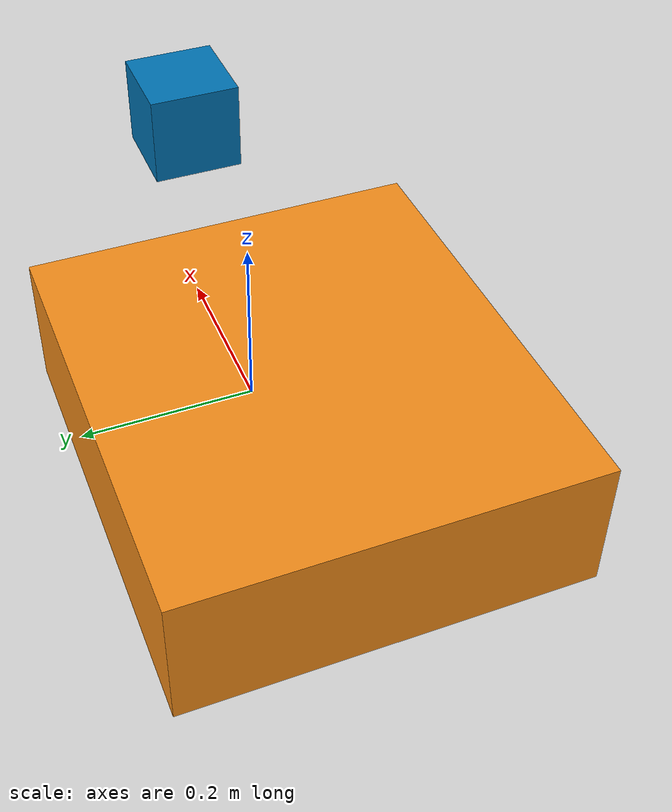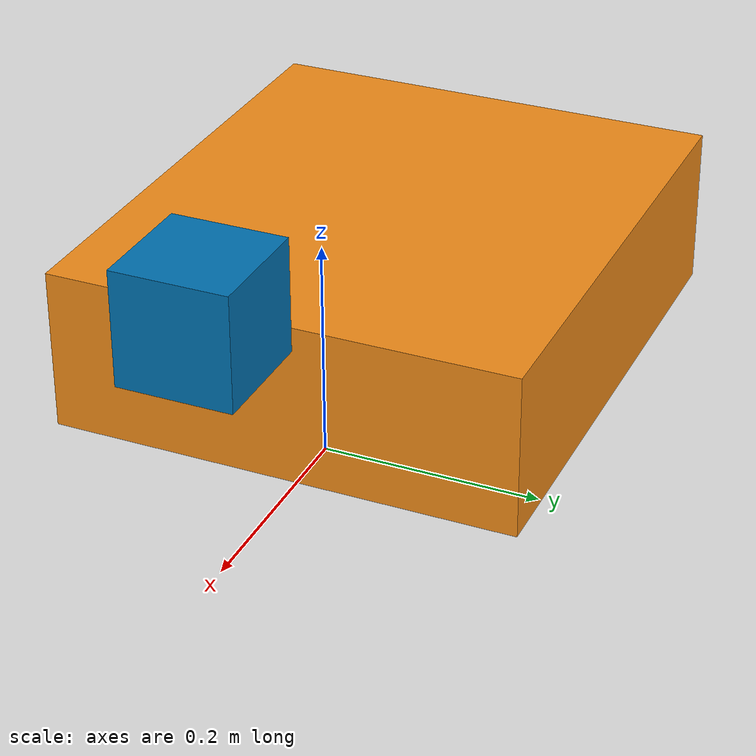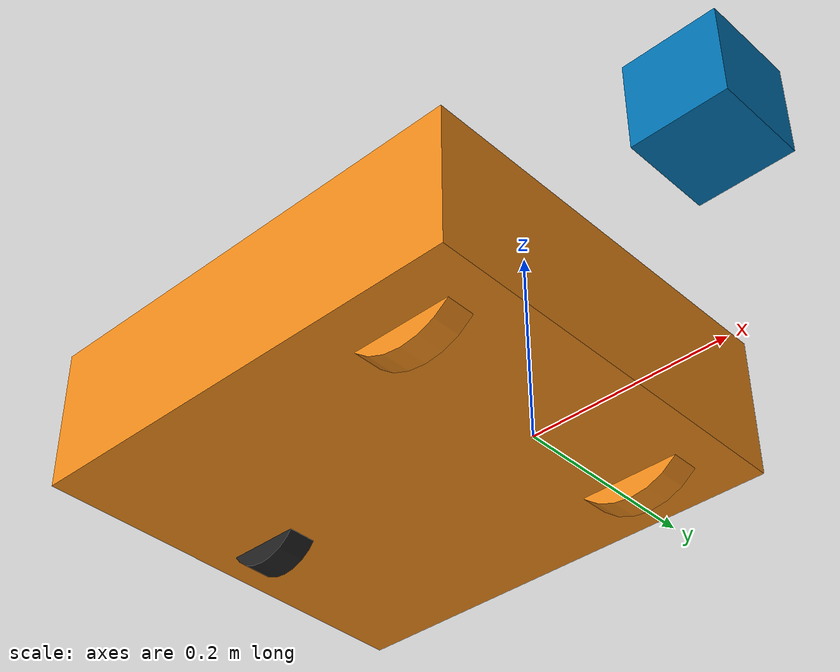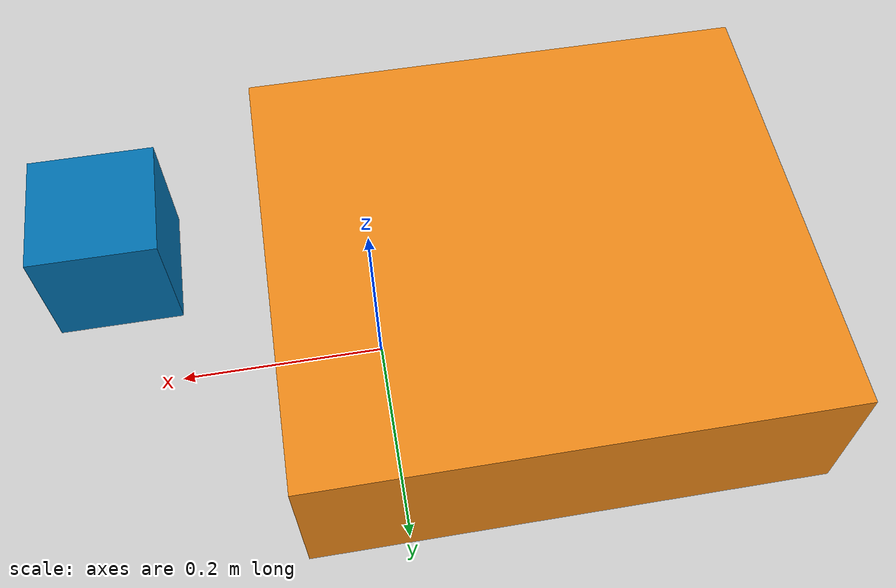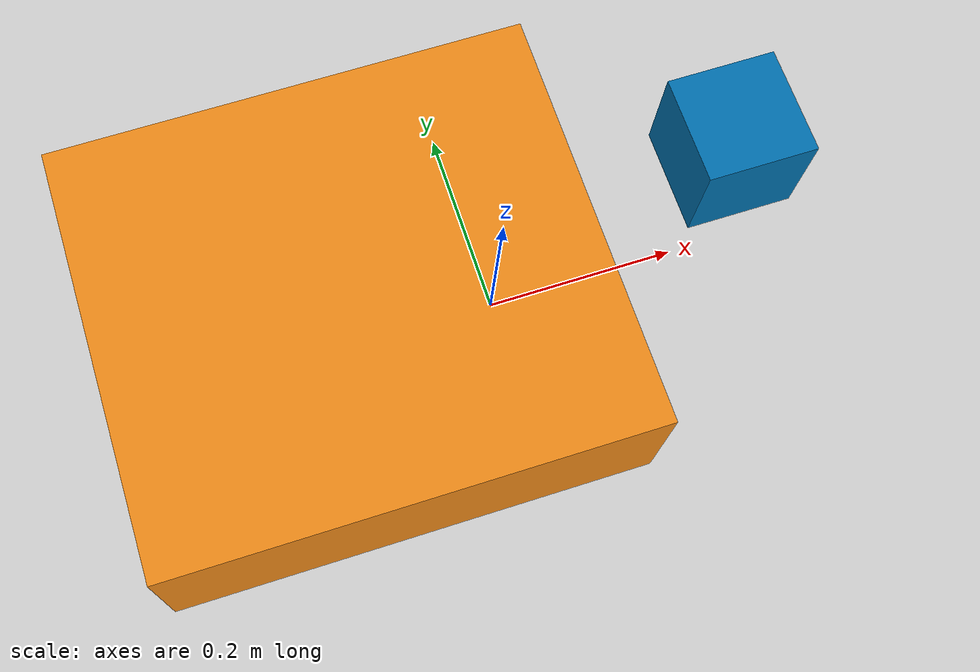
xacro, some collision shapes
<?xml version="1.0"?>

<robot name="orne_alpha" xmlns:xacro="http://ros.org/wiki/xacro"
                         xmlns:sensor="http://playerstage.sourceforge.net/gazebo/xmlschema/#sensor"
                         xmlns:controller="http://playerstage.sourceforge.net/gazebo/xmlschema/#controller"
                         xmlns:interface="http://playerstage.sourceforge.net/gazebo/xmlschema/#interface"
>

<xacro:include filename="$(find icart_mini_description)/urdf/icart_mini.xacro"/>
<xacro:include filename="$(find icart_mini_description)/urdf/sensors/imu.urdf.xacro"/>
<xacro:include filename="$(find icart_mini_description)/urdf/sensors/hokuyo.urdf.xacro"/>

<!-- Setting for imu -->
<xacro:sensor_imu name="imu" parent="base_link" size="0.05 0.05 0.05">
    <origin xyz="-0.0 0.0 0.1" rpy="0 3.14 0"/>
</xacro:sensor_imu>

<!-- Setting for levelly fixed 2D URG -->
<xacro:sensor_hokuyo name="hokuyo" parent="base_link">
    <origin xyz="0.212 0 0.2485" rpy="0 0 0"/>
</xacro:sensor_hokuyo>

</robot>

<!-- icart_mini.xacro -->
<!-- Revolute-Revolute Manipulator -->
<robot name="icart_mini" xmlns:xacro="http://www.ros.org/wiki/xacro">
  <!-- Constants for robot dimensions -->
  <xacro:property name="PI" value="3.1415926535897931"/>

  <!-- Import Rviz colors -->
  <xacro:include filename="$(find icart_mini_description)/urdf/materials.xacro" />
  <xacro:include filename="$(find icart_mini_description)/urdf/icart_mini.gazebo"/>

  <!-- Base Link -->
  <link name="base_link">
    <collision>
      <origin xyz="-0.15 0 0.1" rpy="0 0 0"/>
      <geometry>
	    <box size=".485 .43 .15"/>
      </geometry>
    </collision>

    <visual>
      <origin xyz="-0.15 0 0.1" rpy="0 0 0"/>
      <geometry>
	    <box size=".485 .43 .15"/>
      </geometry>
      <material name="orange"/>
    </visual>

    <collision name="collision">
      <origin xyz="-0.325 0.0 0.05" rpy="0 1.5707 1.5707"/>
      <geometry>
        <cylinder  length="0.03" radius="0.04625"/>
      </geometry>
    </collision>
    <visual name="visual">
      <origin xyz="-0.325 0.0 0.05" rpy="0 1.5707 1.5707"/>
      <geometry>
        <cylinder  length="0.03" radius="0.04625"/>
      </geometry>
    </visual>

    <inertial>
       <mass value="20" />
       <origin xyz="-0.08 0 0" rpy="0 0 0"/>
       <inertia ixx="1" ixy="0" ixz="0" iyy="1" iyz="0" izz="1" />
    </inertial>
  </link>

  <link name="left_wheel">
    <collision name="collision">
      <origin xyz="0 0.0 0" rpy="0 1.5707 1.5707"/>
      <geometry>
         <cylinder  length="0.03" radius="0.0725"/>
      </geometry>
    </collision>
    <visual name="visual">
      <origin xyz="0 0.0 0" rpy="0 1.5707 1.5707"/>
      <geometry>
        <cylinder  length="0.03" radius="0.0725"/>
      </geometry>
    </visual>
    <inertial>
      <mass value="1" />
      <origin xyz="0 0.0 0"/>
      <inertia ixx="0.1" ixy="0" ixz="0" iyy="0.1" iyz="0" izz="0.1" />
    </inertial>
  </link>

  <joint type="revolute" name="left_wheel_hinge">
    <origin xyz="0 0.15 0.075" rpy="0 0 0"/>
    <child link="left_wheel">left_wheel</child>
    <parent link="base_link">base_link</parent>
    <axis xyz="0 1 0"/>
    <limit effort="100" velocity="100.0"  lower="-5000" upper="5000" />
  </joint>

  <link name="right_wheel">
    <collision name="collision">
      <origin xyz="0 0.0 0" rpy="0 1.5707 1.5707"/>
      <geometry>
         <cylinder  length="0.03" radius="0.0725"/>
      </geometry>
    </collision>
    <visual name="visual">
      <origin xyz="0 0.0 0" rpy="0 1.5707 1.5707"/>
      <geometry>
        <cylinder  length="0.03" radius="0.0725"/>
      </geometry>
    </visual>
    <inertial>
      <mass value="1" />
      <origin xyz="0 0.0 0"/>
      <inertia ixx="0.1" ixy="0" ixz="0" iyy="0.1" iyz="0" izz="0.1" />
    </inertial>
  </link>

  <joint type="revolute" name="right_wheel_hinge">
    <origin xyz="0 -0.15 0.075" rpy="0 0 0"/>
    <child link="right_wheel">right_wheel</child>
    <parent link="base_link">base_link</parent>
    <axis xyz="0 1 0"/>
    <limit effort="100" velocity="100.0"  lower="-5000" upper="5000" />
  </joint>

  <transmission name="tran1">
    <type>transmission_interface/SimpleTransmission</type>
    <joint name="left_wheel_hinge">
      <hardwareInterface>VelocityJointInterface</hardwareInterface>
    </joint>
    <actuator name="left_motor">
      <hardwareInterface>VelocityJointInterface</hardwareInterface>
      <mechanicalReduction>1</mechanicalReduction>
    </actuator>
  </transmission>

  <transmission name="tran2">
    <type>transmission_interface/SimpleTransmission</type>
    <joint name="right_wheel_hinge">
      <hardwareInterface>VelocityJointInterface</hardwareInterface>
    </joint>
    <actuator name="right_motor">
      <hardwareInterface>VelocityJointInterface</hardwareInterface>
      <mechanicalReduction>1</mechanicalReduction>
    </actuator>
  </transmission>
</robot>

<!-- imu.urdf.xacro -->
<robot name="sensor_imu" xmlns:xacro="http://ros.org/wiki/xacro"
                         xmlns:controller="http://playerstage.sourceforge.net/gazebo/xmlschema/#controller"
                         xmlns:interface="http://playerstage.sourceforge.net/gazebo/xmlschema/#interface">

  <xacro:macro name="sensor_imu" params="name parent *origin size">
	  <joint name="${name}_joint" type="fixed">
	      <axis xyz="1 0 0"/>
	      <xacro:insert_block name="origin"/>
	      <parent link="${parent}"/>
	      <child link="${name}_link"/>
	  </joint>

	  <link name="${name}_link">
	      <inertial>
	        <mass value="0.001"/>
	        <origin rpy="0 0 0" xyz="0 0 0"/>
	        <inertia ixx="0.0001" ixy="0" ixz="0" iyy="0.000001" iyz="0" izz="0.0001"/>
	      </inertial>
	      <visual>
	        <origin rpy="0 0 0" xyz="0 0 0"/>
	        <geometry>
	          <box size="${size}"/>
	        </geometry>
	      </visual>
	      <collision>
	        <origin rpy="0 0 0" xyz="0 0 0"/>
	        <geometry>
	          <box size="${size}"/>
	        </geometry>
	      </collision>
	  </link>

	  <gazebo>
        <plugin name="ros_imu" filename="libgazebo_ros_imu.so">
            <bodyName>imu_link</bodyName> <!-- bodyName always set base_link by URDF parser -->
            <topicName>imu_data</topicName>
            <serviceName>imu_service</serviceName>
            <gaussianNoise>0.005</gaussianNoise>
	    <updateRate>100.0</updateRate>
        </plugin>
      </gazebo>
  </xacro:macro>

</robot>

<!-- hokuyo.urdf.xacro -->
<robot name="sensor_hokuyo" xmlns:xacro="http://ros.org/wiki/xacro"
                              xmlns:controller="http://playerstage.sourceforge.net/gazebo/xmlschema/#controller"
                              xmlns:interface="http://playerstage.sourceforge.net/gazebo/xmlschema/#interface">

  <xacro:property name="hokuyo_link" value="0.1" /> <!-- Size of square 'hokuyo' box -->
  <xacro:macro name="sensor_hokuyo" params="name parent *origin">
    <joint name="${name}_joint" type="fixed">
      <axis xyz="0 1 0"/>
      <xacro:insert_block name="origin"/>
      <parent link="${parent}"/>
      <child link="${name}_link"/>
    </joint>

    <link name="${name}_link">
      <collision>
        <origin xyz="0 0 0" rpy="0 0 0"/>
        <geometry>
            <box size="${hokuyo_link} ${hokuyo_link} ${hokuyo_link}"/>
        </geometry>
      </collision>

      <visual>
        <origin xyz="0 0 0" rpy="0 0 0"/>
        <geometry>
          <mesh filename="package://icart_mini_description/meshes/hokuyo.dae"/>
        </geometry>
      </visual>

      <inertial>
        <mass value="0.0001"/>
        <origin xyz="0 0 0" rpy="0 0 0"/>
        <inertia ixx="0.0001" ixy="0" ixz="0" iyy="0.0001" iyz="0" izz="0.0001"/>
      </inertial>
    </link>

  </xacro:macro>

</robot>
